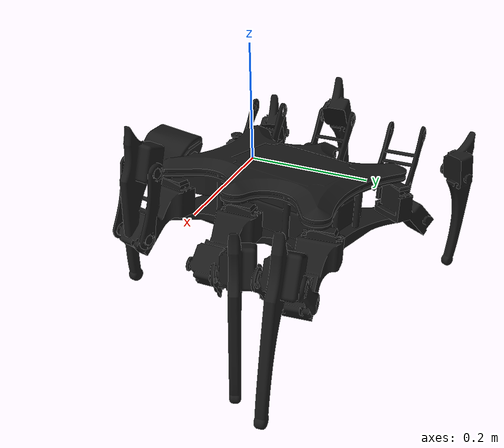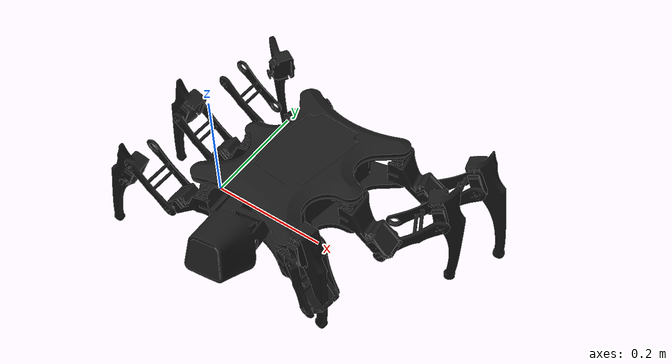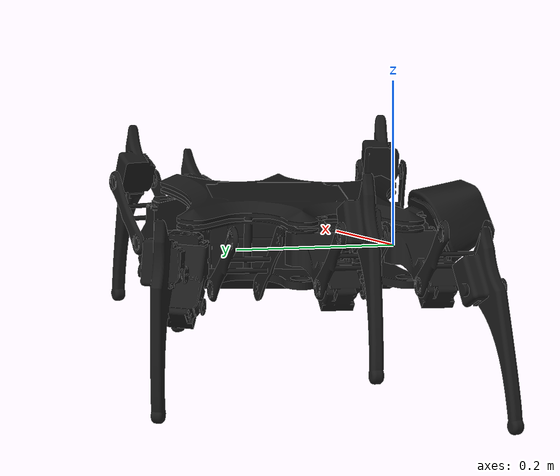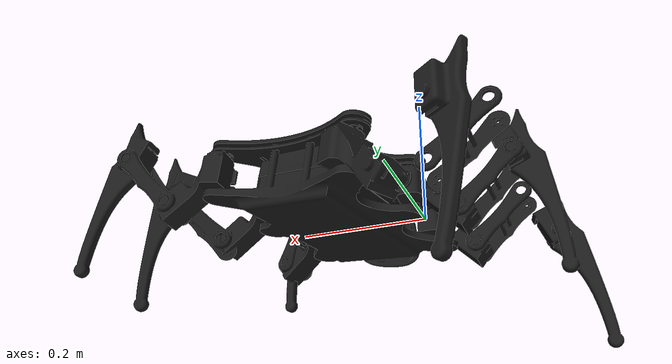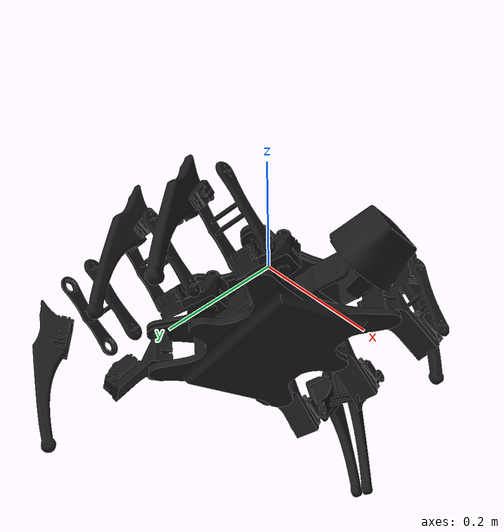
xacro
<?xml version="1.0" ?>
<robot name="hexapod" xmlns:xacro="http://www.ros.org/wiki/xacro">

<xacro:include filename="$(find hexapod_description)/urdf/materials.xacro" />
<xacro:include filename="$(find hexapod_description)/urdf/hexapod.trans" />
<xacro:include filename="$(find hexapod_description)/urdf/hexapod.gazebo" />
<link name="base_link">
  <inertial>
    <origin xyz="0.1000352418955988 0.06495559041692857 0.006960329203092366" rpy="0 0 0"/>
    <mass value="14.09466584247892"/>
    <inertia ixx="0.167546" iyy="0.075339" izz="0.199615" ixy="-0.012339" iyz="0.003184" ixz="-0.003868"/>
  </inertial>
  <visual>
    <origin xyz="0 0 0" rpy="0 0 0"/>
    <geometry>
      <mesh filename="file://$(find hexapod_description)/meshes/base_link.stl" scale="0.001 0.001 0.001"/>
    </geometry>
    <material name="silver"/>
  </visual>
  <collision>
    <origin xyz="0 0 0" rpy="0 0 0"/>
    <geometry>
      <mesh filename="file://$(find hexapod_description)/meshes/base_link.stl" scale="0.001 0.001 0.001"/>
    </geometry>
  </collision>
</link>

<link name="leg_1_link_2_1">
  <inertial>
    <origin xyz="-0.020798247907869903 -0.003004122621169035 -0.05840364105605461" rpy="0 0 0"/>
    <mass value="1.012661950148346"/>
    <inertia ixx="0.001014" iyy="0.001236" izz="0.000891" ixy="-0.000197" iyz="-0.00022" ixz="-0.000489"/>
  </inertial>
  <visual>
    <origin xyz="0.031628 0.00646 -0.021757" rpy="0 0 0"/>
    <geometry>
      <mesh filename="file://$(find hexapod_description)/meshes/leg_1_link_2_1.stl" scale="0.001 0.001 0.001"/>
    </geometry>
    <material name="silver"/>
  </visual>
  <collision>
    <origin xyz="0.031628 0.00646 -0.021757" rpy="0 0 0"/>
    <geometry>
      <mesh filename="file://$(find hexapod_description)/meshes/leg_1_link_2_1.stl" scale="0.001 0.001 0.001"/>
    </geometry>
  </collision>
</link>

<link name="leg_1_link_3_1">
  <inertial>
    <origin xyz="-0.05232794213563882 0.015850438170881664 0.012387465467738626" rpy="0 0 0"/>
    <mass value="0.22871600239093776"/>
    <inertia ixx="0.000208" iyy="0.000275" izz="0.000422" ixy="-1e-05" iyz="1.8e-05" ixz="6.7e-05"/>
  </inertial>
  <visual>
    <origin xyz="0.080903 0.053284 0.063455" rpy="0 0 0"/>
    <geometry>
      <mesh filename="file://$(find hexapod_description)/meshes/leg_1_link_3_1.stl" scale="0.001 0.001 0.001"/>
    </geometry>
    <material name="silver"/>
  </visual>
  <collision>
    <origin xyz="0.080903 0.053284 0.063455" rpy="0 0 0"/>
    <geometry>
      <mesh filename="file://$(find hexapod_description)/meshes/leg_1_link_3_1.stl" scale="0.001 0.001 0.001"/>
    </geometry>
  </collision>
</link>

<link name="leg_1_link_1_1">
  <inertial>
    <origin xyz="-0.024118708207036738 0.023198280722906535 -0.02416394528421939" rpy="0 0 0"/>
    <mass value="0.907399585528797"/>
    <inertia ixx="0.0028" iyy="0.003123" izz="0.0006" ixy="-0.00015" iyz="-0.00034" ixz="-0.000941"/>
  </inertial>
  <visual>
    <origin xyz="0.175395 0.070243 0.035462" rpy="0 0 0"/>
    <geometry>
      <mesh filename="file://$(find hexapod_description)/meshes/leg_1_link_1_1.stl" scale="0.001 0.001 0.001"/>
    </geometry>
    <material name="silver"/>
  </visual>
  <collision>
    <origin xyz="0.175395 0.070243 0.035462" rpy="0 0 0"/>
    <geometry>
      <mesh filename="file://$(find hexapod_description)/meshes/leg_1_link_1_1.stl" scale="0.001 0.001 0.001"/>
    </geometry>
  </collision>
</link>

<link name="leg_3_link_3_1">
  <inertial>
    <origin xyz="-0.014715328300328638 0.017066498243044487 -0.05783367655412228" rpy="0 0 0"/>
    <mass value="1.0126620006859057"/>
    <inertia ixx="0.000964" iyy="0.001294" izz="0.000883" ixy="0.000135" iyz="0.000218" ixz="-0.000494"/>
  </inertial>
  <visual>
    <origin xyz="-0.02145 -0.24803 -0.025922" rpy="0 0 0"/>
    <geometry>
      <mesh filename="file://$(find hexapod_description)/meshes/leg_3_link_3_1.stl" scale="0.001 0.001 0.001"/>
    </geometry>
    <material name="silver"/>
  </visual>
  <collision>
    <origin xyz="-0.02145 -0.24803 -0.025922" rpy="0 0 0"/>
    <geometry>
      <mesh filename="file://$(find hexapod_description)/meshes/leg_3_link_3_1.stl" scale="0.001 0.001 0.001"/>
    </geometry>
  </collision>
</link>

<link name="leg_3_link_2_1">
  <inertial>
    <origin xyz="-0.02490321172110873 0.04393892851157011 0.024331856966839732" rpy="0 0 0"/>
    <mass value="0.2287158182027981"/>
    <inertia ixx="0.000248" iyy="0.000272" izz="0.000385" ixy="1.3e-05" iyz="-6.3e-05" ixz="8.6e-05"/>
  </inertial>
  <visual>
    <origin xyz="0.042897 -0.255314 0.061759" rpy="0 0 0"/>
    <geometry>
      <mesh filename="file://$(find hexapod_description)/meshes/leg_3_link_2_1.stl" scale="0.001 0.001 0.001"/>
    </geometry>
    <material name="silver"/>
  </visual>
  <collision>
    <origin xyz="0.042897 -0.255314 0.061759" rpy="0 0 0"/>
    <geometry>
      <mesh filename="file://$(find hexapod_description)/meshes/leg_3_link_2_1.stl" scale="0.001 0.001 0.001"/>
    </geometry>
  </collision>
</link>

<link name="leg_3_link_1_1">
  <inertial>
    <origin xyz="0.008717952333481188 0.029799584273488944 -0.027197642277439673" rpy="0 0 0"/>
    <mass value="0.9073986789846695"/>
    <inertia ixx="0.00313" iyy="0.003181" izz="0.000211" ixy="8e-06" iyz="3.3e-05" ixz="0.000122"/>
  </inertial>
  <visual>
    <origin xyz="0.11862 -0.300684 0.014775" rpy="0 0 0"/>
    <geometry>
      <mesh filename="file://$(find hexapod_description)/meshes/leg_3_link_1_1.stl" scale="0.001 0.001 0.001"/>
    </geometry>
    <material name="silver"/>
  </visual>
  <collision>
    <origin xyz="0.11862 -0.300684 0.014775" rpy="0 0 0"/>
    <geometry>
      <mesh filename="file://$(find hexapod_description)/meshes/leg_3_link_1_1.stl" scale="0.001 0.001 0.001"/>
    </geometry>
  </collision>
</link>

<link name="leg_4_link_3_1">
  <inertial>
    <origin xyz="0.03493574224479934 -0.00037422890006483245 -0.05136730013941539" rpy="0 0 0"/>
    <mass value="1.0132520108724496"/>
    <inertia ixx="0.000726" iyy="0.001283" izz="0.001145" ixy="0.000203" iyz="-0.00012" ixz="0.000471"/>
  </inertial>
  <visual>
    <origin xyz="-0.178057 0.050638 -0.048896" rpy="0 0 0"/>
    <geometry>
      <mesh filename="file://$(find hexapod_description)/meshes/leg_4_link_3_1.stl" scale="0.001 0.001 0.001"/>
    </geometry>
    <material name="silver"/>
  </visual>
  <collision>
    <origin xyz="-0.178057 0.050638 -0.048896" rpy="0 0 0"/>
    <geometry>
      <mesh filename="file://$(find hexapod_description)/meshes/leg_4_link_3_1.stl" scale="0.001 0.001 0.001"/>
    </geometry>
  </collision>
</link>

<link name="leg_4_link_2_1">
  <inertial>
    <origin xyz="0.051695518913694394 0.020397632984701985 -0.0029876891797632928" rpy="0 0 0"/>
    <mass value="0.22866968962750417"/>
    <inertia ixx="0.000188" iyy="0.000275" izz="0.00044" ixy="8e-06" iyz="-2e-06" ixz="1.9e-05"/>
  </inertial>
  <visual>
    <origin xyz="-0.251957 0.091451 0.020912" rpy="0 0 0"/>
    <geometry>
      <mesh filename="file://$(find hexapod_description)/meshes/leg_4_link_2_1.stl" scale="0.001 0.001 0.001"/>
    </geometry>
    <material name="silver"/>
  </visual>
  <collision>
    <origin xyz="-0.251957 0.091451 0.020912" rpy="0 0 0"/>
    <geometry>
      <mesh filename="file://$(find hexapod_description)/meshes/leg_4_link_2_1.stl" scale="0.001 0.001 0.001"/>
    </geometry>
  </collision>
</link>

<link name="leg_4_link_1_1">
  <inertial>
    <origin xyz="-0.000526697869027537 0.02827489662401167 -0.030353038043343876" rpy="0 0 0"/>
    <mass value="0.9074869947367368"/>
    <inertia ixx="0.002641" iyy="0.003177" izz="0.000712" ixy="3e-05" iyz="1.7e-05" ixz="-0.001109"/>
  </inertial>
  <visual>
    <origin xyz="-0.351263 0.100253 0.028711" rpy="0 0 0"/>
    <geometry>
      <mesh filename="file://$(find hexapod_description)/meshes/leg_4_link_1_1.stl" scale="0.001 0.001 0.001"/>
    </geometry>
    <material name="silver"/>
  </visual>
  <collision>
    <origin xyz="-0.351263 0.100253 0.028711" rpy="0 0 0"/>
    <geometry>
      <mesh filename="file://$(find hexapod_description)/meshes/leg_4_link_1_1.stl" scale="0.001 0.001 0.001"/>
    </geometry>
  </collision>
</link>

<link name="leg_5_link_3_1">
  <inertial>
    <origin xyz="0.033866656604737144 -0.008244553986686304 -0.05142356931495705" rpy="0 0 0"/>
    <mass value="1.0132520108724496"/>
    <inertia ixx="0.00087" iyy="0.00115" izz="0.001134" ixy="0.000307" iyz="-0.000243" ixz="0.000428"/>
  </inertial>
  <visual>
    <origin xyz="-0.212362 -0.074971 -0.051984" rpy="0 0 0"/>
    <geometry>
      <mesh filename="file://$(find hexapod_description)/meshes/leg_5_link_3_1.stl" scale="0.001 0.001 0.001"/>
    </geometry>
    <material name="silver"/>
  </visual>
  <collision>
    <origin xyz="-0.212362 -0.074971 -0.051984" rpy="0 0 0"/>
    <geometry>
      <mesh filename="file://$(find hexapod_description)/meshes/leg_5_link_3_1.stl" scale="0.001 0.001 0.001"/>
    </geometry>
  </collision>
</link>

<link name="leg_5_llink_2_1">
  <inertial>
    <origin xyz="0.05581296761700272 0.005046809815590542 0.0013923363225871316" rpy="0 0 0"/>
    <mass value="0.22866968962750417"/>
    <inertia ixx="0.000198" iyy="0.000265" izz="0.000441" ixy="3e-05" iyz="-3e-06" ixz="-9e-06"/>
  </inertial>
  <visual>
    <origin xyz="-0.272618 -0.017746 0.019394" rpy="0 0 0"/>
    <geometry>
      <mesh filename="file://$(find hexapod_description)/meshes/leg_5_llink_2_1.stl" scale="0.001 0.001 0.001"/>
    </geometry>
    <material name="silver"/>
  </visual>
  <collision>
    <origin xyz="-0.272618 -0.017746 0.019394" rpy="0 0 0"/>
    <geometry>
      <mesh filename="file://$(find hexapod_description)/meshes/leg_5_llink_2_1.stl" scale="0.001 0.001 0.001"/>
    </geometry>
  </collision>
</link>

<link name="leg_5_link_1_1">
  <inertial>
    <origin xyz="0.013937076987451114 0.025884273932207755 -0.029271222693096868" rpy="0 0 0"/>
    <mass value="0.9074869947367368"/>
    <inertia ixx="0.003054" iyy="0.003145" izz="0.000331" ixy="7e-05" iyz="0.000231" ixz="-0.000546"/>
  </inertial>
  <visual>
    <origin xyz="-0.365809 0.018422 0.016698" rpy="0 0 0"/>
    <geometry>
      <mesh filename="file://$(find hexapod_description)/meshes/leg_5_link_1_1.stl" scale="0.001 0.001 0.001"/>
    </geometry>
    <material name="silver"/>
  </visual>
  <collision>
    <origin xyz="-0.365809 0.018422 0.016698" rpy="0 0 0"/>
    <geometry>
      <mesh filename="file://$(find hexapod_description)/meshes/leg_5_link_1_1.stl" scale="0.001 0.001 0.001"/>
    </geometry>
  </collision>
</link>

<link name="leg_6_link_3_1">
  <inertial>
    <origin xyz="0.03477889817756116 0.0024676237025516856 -0.05141615896524518" rpy="0 0 0"/>
    <mass value="1.0132520108724496"/>
    <inertia ixx="0.000692" iyy="0.001316" izz="0.001146" ixy="0.000149" iyz="-7.4e-05" ixz="0.000479"/>
  </inertial>
  <visual>
    <origin xyz="-0.231135 -0.203852 -0.053061" rpy="0 0 0"/>
    <geometry>
      <mesh filename="file://$(find hexapod_description)/meshes/leg_6_link_3_1.stl" scale="0.001 0.001 0.001"/>
    </geometry>
    <material name="silver"/>
  </visual>
  <collision>
    <origin xyz="-0.231135 -0.203852 -0.053061" rpy="0 0 0"/>
    <geometry>
      <mesh filename="file://$(find hexapod_description)/meshes/leg_6_link_3_1.stl" scale="0.001 0.001 0.001"/>
    </geometry>
  </collision>
</link>

<link name="leg_6_link_2_1">
  <inertial>
    <origin xyz="-0.015065755941645498 0.025266709153690392 0.04771890579685114" rpy="0 0 0"/>
    <mass value="0.22866968962750417"/>
    <inertia ixx="0.000417" iyy="0.000276" izz="0.000211" ixy="2e-06" iyz="-0.0" ixz="7.6e-05"/>
  </inertial>
  <visual>
    <origin xyz="-0.308723 -0.169751 0.016345" rpy="0 0 0"/>
    <geometry>
      <mesh filename="file://$(find hexapod_description)/meshes/leg_6_link_2_1.stl" scale="0.001 0.001 0.001"/>
    </geometry>
    <material name="silver"/>
  </visual>
  <collision>
    <origin xyz="-0.308723 -0.169751 0.016345" rpy="0 0 0"/>
    <geometry>
      <mesh filename="file://$(find hexapod_description)/meshes/leg_6_link_2_1.stl" scale="0.001 0.001 0.001"/>
    </geometry>
  </collision>
</link>

<link name="leg_6_link_1_1">
  <inertial>
    <origin xyz="0.030015927768925255 0.028477589836575362 0.003027671908309146" rpy="0 0 0"/>
    <mass value="0.9074869947367368"/>
    <inertia ixx="0.000344" iyy="0.003179" izz="0.003007" ixy="6e-05" iyz="4e-06" ixz="0.000618"/>
  </inertial>
  <visual>
    <origin xyz="-0.277665 -0.170495 -0.078706" rpy="0 0 0"/>
    <geometry>
      <mesh filename="file://$(find hexapod_description)/meshes/leg_6_link_1_1.stl" scale="0.001 0.001 0.001"/>
    </geometry>
    <material name="silver"/>
  </visual>
  <collision>
    <origin xyz="-0.277665 -0.170495 -0.078706" rpy="0 0 0"/>
    <geometry>
      <mesh filename="file://$(find hexapod_description)/meshes/leg_6_link_1_1.stl" scale="0.001 0.001 0.001"/>
    </geometry>
  </collision>
</link>

<link name="leg_2_link_3__1">
  <inertial>
    <origin xyz="-0.0204324626555867 0.004535002979926123 -0.058433485854018384" rpy="0 0 0"/>
    <mass value="1.0126607300527286"/>
    <inertia ixx="0.000937" iyy="0.001326" izz="0.000878" ixy="-9.5e-05" iyz="-6.9e-05" ixz="-0.000533"/>
  </inertial>
  <visual>
    <origin xyz="0.012855 -0.122421 -0.022834" rpy="0 0 0"/>
    <geometry>
      <mesh filename="file://$(find hexapod_description)/meshes/leg_2_link_3__1.stl" scale="0.001 0.001 0.001"/>
    </geometry>
    <material name="silver"/>
  </visual>
  <collision>
    <origin xyz="0.012855 -0.122421 -0.022834" rpy="0 0 0"/>
    <geometry>
      <mesh filename="file://$(find hexapod_description)/meshes/leg_2_link_3__1.stl" scale="0.001 0.001 0.001"/>
    </geometry>
  </collision>
</link>

<link name="leg_2_link_2_1">
  <inertial>
    <origin xyz="-0.04728937759402714 0.028753242764041703 0.008935509645913484" rpy="0 0 0"/>
    <mass value="0.22871574861196214"/>
    <inertia ixx="0.000197" iyy="0.000276" izz="0.000432" ixy="7e-06" iyz="-4e-06" ixz="4.9e-05"/>
  </inertial>
  <visual>
    <origin xyz="0.072124 -0.093122 0.063828" rpy="0 0 0"/>
    <geometry>
      <mesh filename="file://$(find hexapod_description)/meshes/leg_2_link_2_1.stl" scale="0.001 0.001 0.001"/>
    </geometry>
    <material name="silver"/>
  </visual>
  <collision>
    <origin xyz="0.072124 -0.093122 0.063828" rpy="0 0 0"/>
    <geometry>
      <mesh filename="file://$(find hexapod_description)/meshes/leg_2_link_2_1.stl" scale="0.001 0.001 0.001"/>
    </geometry>
  </collision>
</link>

<link name="leg_2_link_1_1">
  <inertial>
    <origin xyz="0.00945298222541896 0.027417343905499214 0.029370612679365103" rpy="0 0 0"/>
    <mass value="0.9073984436402253"/>
    <inertia ixx="0.003123" iyy="0.003172" izz="0.000228" ixy="1.4e-05" iyz="6.6e-05" ixz="0.000248"/>
  </inertial>
  <visual>
    <origin xyz="0.169894 -0.100943 0.04434" rpy="0 0 0"/>
    <geometry>
      <mesh filename="file://$(find hexapod_description)/meshes/leg_2_link_1_1.stl" scale="0.001 0.001 0.001"/>
    </geometry>
    <material name="silver"/>
  </visual>
  <collision>
    <origin xyz="0.169894 -0.100943 0.04434" rpy="0 0 0"/>
    <geometry>
      <mesh filename="file://$(find hexapod_description)/meshes/leg_2_link_1_1.stl" scale="0.001 0.001 0.001"/>
    </geometry>
  </collision>
</link>

<joint name="Leg_1_coxa" type="continuous">
  <origin xyz="-0.031628 -0.00646 0.021757" rpy="0 0 0"/>
  <parent link="base_link"/>
  <child link="leg_1_link_2_1"/>
  <axis xyz="0.126261 -0.010099 -0.991946"/>
</joint>

<joint name="Leg_1_tibia" type="continuous">
  <origin xyz="-0.049275 -0.046824 -0.085212" rpy="0 0 0"/>
  <parent link="leg_1_link_2_1"/>
  <child link="leg_1_link_3_1"/>
  <axis xyz="0.186207 -0.981932 0.033699"/>
</joint>

<joint name="Leg_1_femur" type="continuous">
  <origin xyz="-0.094492 -0.016959 0.027993" rpy="0 0 0"/>
  <parent link="leg_1_link_3_1"/>
  <child link="leg_1_link_1_1"/>
  <axis xyz="0.186207 -0.981932 0.033699"/>
</joint>

<joint name="Leg_3_coxa" type="continuous">
  <origin xyz="0.02145 0.24803 0.025922" rpy="0 0 0"/>
  <parent link="base_link"/>
  <child link="leg_3_link_3_1"/>
  <axis xyz="0.126261 -0.010099 -0.991946"/>
</joint>

<joint name="Leg_3_tibia" type="continuous">
  <origin xyz="-0.064347 0.007284 -0.087681" rpy="0 0 0"/>
  <parent link="leg_3_link_3_1"/>
  <child link="leg_3_link_2_1"/>
  <axis xyz="-0.540263 -0.839339 -0.060222"/>
</joint>

<joint name="Leg_3_femur" type="continuous">
  <origin xyz="-0.075723 0.04537 0.046984" rpy="0 0 0"/>
  <parent link="leg_3_link_2_1"/>
  <child link="leg_3_link_1_1"/>
  <axis xyz="-0.540263 -0.839339 -0.060222"/>
</joint>

<joint name="leg_4_coxa" type="revolute">
  <origin xyz="0.178057 -0.050638 0.048896" rpy="0 0 0"/>
  <parent link="base_link"/>
  <child link="leg_4_link_3_1"/>
  <axis xyz="0.126261 -0.010099 -0.991946"/>
  <limit upper="0.349066" lower="-0.436332" effort="100" velocity="100"/>
</joint>

<joint name="Leg_4_tibia" type="revolute">
  <origin xyz="0.0739 -0.040813 -0.069808" rpy="0 0 0"/>
  <parent link="leg_4_link_3_1"/>
  <child link="leg_4_link_2_1"/>
  <axis xyz="-0.088375 -0.996087 -0.001107"/>
  <limit upper="1.832596" lower="-1.832596" effort="100" velocity="100"/>
</joint>

<joint name="Leg_4_femur" type="revolute">
  <origin xyz="0.099306 -0.008802 -0.007799" rpy="0 0 0"/>
  <parent link="leg_4_link_2_1"/>
  <child link="leg_4_link_1_1"/>
  <axis xyz="0.088375 0.996087 0.001107"/>
  <limit upper="0.785398" lower="-2.268928" effort="100" velocity="100"/>
</joint>

<joint name="leg_5_coxa" type="revolute">
  <origin xyz="0.212362 0.074971 0.051984" rpy="0 0 0"/>
  <parent link="base_link"/>
  <child link="leg_5_link_3_1"/>
  <axis xyz="0.126261 -0.010099 -0.991946"/>
  <limit upper="-0.139626" lower="-0.523599" effort="100" velocity="100"/>
</joint>

<joint name="Leg_5_tibia" type="revolute">
  <origin xyz="0.060256 -0.057225 -0.071378" rpy="0 0 0"/>
  <parent link="leg_5_link_3_1"/>
  <child link="leg_5_llink_2_1"/>
  <axis xyz="-0.360661 -0.931986 -0.036418"/>
  <limit upper="1.047198" lower="-3.665191" effort="100" velocity="100"/>
</joint>

<joint name="Leg_5_femur" type="revolute">
  <origin xyz="0.093191 -0.036168 0.002696" rpy="0 0 0"/>
  <parent link="leg_5_llink_2_1"/>
  <child link="leg_5_link_1_1"/>
  <axis xyz="0.360661 0.931986 0.036418"/>
  <limit upper="0.785398" lower="-2.268928" effort="100" velocity="100"/>
</joint>

<joint name="Leg_6_coxa" type="revolute">
  <origin xyz="0.231135 0.203852 0.053061" rpy="0 0 0"/>
  <parent link="base_link"/>
  <child link="leg_6_link_3_1"/>
  <axis xyz="0.126261 -0.010099 -0.991946"/>
  <limit upper="-0.139626" lower="-0.523599" effort="100" velocity="100"/>
</joint>

<joint name="Leg_6_tibia" type="revolute">
  <origin xyz="0.077588 -0.034101 -0.069406" rpy="0 0 0"/>
  <parent link="leg_6_link_3_1"/>
  <child link="leg_6_link_2_1"/>
  <axis xyz="0.01178 -0.999862 0.011679"/>
  <limit upper="0.959931" lower="-3.316126" effort="100" velocity="100"/>
</joint>

<joint name="Leg_6_femur" type="revolute">
  <origin xyz="-0.031058 0.000744 0.095051" rpy="0 0 0"/>
  <parent link="leg_6_link_2_1"/>
  <child link="leg_6_link_1_1"/>
  <axis xyz="-0.01178 0.999862 -0.011679"/>
  <limit upper="0.0" lower="-2.268928" effort="100" velocity="100"/>
</joint>

<joint name="Leg_2_coxa" type="continuous">
  <origin xyz="-0.012855 0.122421 0.022834" rpy="0 0 0"/>
  <parent link="base_link"/>
  <child link="leg_2_link_3__1"/>
  <axis xyz="0.126261 -0.010099 -0.991946"/>
</joint>

<joint name="Leg_2_tibia" type="continuous">
  <origin xyz="-0.059269 -0.029299 -0.086662" rpy="0 0 0"/>
  <parent link="leg_2_link_3__1"/>
  <child link="leg_2_link_2_1"/>
  <axis xyz="-0.079733 -0.996816 0.0"/>
</joint>

<joint name="Leg_2_femur" type="continuous">
  <origin xyz="-0.09777 0.007821 0.019488" rpy="0 0 0"/>
  <parent link="leg_2_link_2_1"/>
  <child link="leg_2_link_1_1"/>
  <axis xyz="-0.079733 -0.996816 0.0"/>
</joint>

</robot>

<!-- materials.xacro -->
<robot name="hexapod" xmlns:xacro="http://www.ros.org/wiki/xacro" >

<material name="silver">
  <color rgba="0.100 0.100 0.100 1.000"/>
</material>

<material name="gold">
  <color rgba="0.90 0.90 0.00 1.000"/>
</material>

</robot>

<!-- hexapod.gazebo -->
<robot name="hexapod" xmlns:xacro="http://www.ros.org/wiki/xacro" >

<xacro:property name="body_color" value="Gazebo/Silver" />

<gazebo reference="base_link">
  <material>${body_color}</material>
  <mu1>0.2</mu1>
  <mu2>0.2</mu2>
  <self_collide>true</self_collide>
  <gravity>true</gravity>
</gazebo>

<gazebo reference="leg_1_link_2_1">
  <material>${body_color}</material>
  <mu1>0.2</mu1>
  <mu2>0.2</mu2>
  <self_collide>true</self_collide>
</gazebo>

<gazebo reference="leg_1_link_3_1">
  <material>${body_color}</material>
  <mu1>0.2</mu1>
  <mu2>0.2</mu2>
  <self_collide>true</self_collide>
</gazebo>

<gazebo reference="leg_1_link_1_1">
  <material>${body_color}</material>
  <mu1>0.2</mu1>
  <mu2>0.2</mu2>
  <self_collide>true</self_collide>
</gazebo>

<gazebo reference="leg_3_link_3_1">
  <material>${body_color}</material>
  <mu1>0.2</mu1>
  <mu2>0.2</mu2>
  <self_collide>true</self_collide>
</gazebo>

<gazebo reference="leg_3_link_2_1">
  <material>${body_color}</material>
  <mu1>0.2</mu1>
  <mu2>0.2</mu2>
  <self_collide>true</self_collide>
</gazebo>

<gazebo reference="leg_3_link_1_1">
  <material>${body_color}</material>
  <mu1>0.2</mu1>
  <mu2>0.2</mu2>
  <self_collide>true</self_collide>
</gazebo>

<gazebo reference="leg_4_link_3_1">
  <material>${body_color}</material>
  <mu1>0.2</mu1>
  <mu2>0.2</mu2>
  <self_collide>true</self_collide>
</gazebo>

<gazebo reference="leg_4_link_2_1">
  <material>${body_color}</material>
  <mu1>0.2</mu1>
  <mu2>0.2</mu2>
  <self_collide>true</self_collide>
</gazebo>

<gazebo reference="leg_4_link_1_1">
  <material>${body_color}</material>
  <mu1>0.2</mu1>
  <mu2>0.2</mu2>
  <self_collide>true</self_collide>
</gazebo>

<gazebo reference="leg_5_link_3_1">
  <material>${body_color}</material>
  <mu1>0.2</mu1>
  <mu2>0.2</mu2>
  <self_collide>true</self_collide>
</gazebo>

<gazebo reference="leg_5_llink_2_1">
  <material>${body_color}</material>
  <mu1>0.2</mu1>
  <mu2>0.2</mu2>
  <self_collide>true</self_collide>
</gazebo>

<gazebo reference="leg_5_link_1_1">
  <material>${body_color}</material>
  <mu1>0.2</mu1>
  <mu2>0.2</mu2>
  <self_collide>true</self_collide>
</gazebo>

<gazebo reference="leg_6_link_3_1">
  <material>${body_color}</material>
  <mu1>0.2</mu1>
  <mu2>0.2</mu2>
  <self_collide>true</self_collide>
</gazebo>

<gazebo reference="leg_6_link_2_1">
  <material>${body_color}</material>
  <mu1>0.2</mu1>
  <mu2>0.2</mu2>
  <self_collide>true</self_collide>
</gazebo>

<gazebo reference="leg_6_link_1_1">
  <material>${body_color}</material>
  <mu1>0.2</mu1>
  <mu2>0.2</mu2>
  <self_collide>true</self_collide>
</gazebo>

<gazebo reference="leg_2_link_3__1__1">
  <material>${body_color}</material>
  <mu1>0.2</mu1>
  <mu2>0.2</mu2>
  <self_collide>true</self_collide>
</gazebo>

<gazebo reference="leg_2_link_2_1">
  <material>${body_color}</material>
  <mu1>0.2</mu1>
  <mu2>0.2</mu2>
  <self_collide>true</self_collide>
</gazebo>

<gazebo reference="leg_2_link_1_1">
  <material>${body_color}</material>
  <mu1>0.2</mu1>
  <mu2>0.2</mu2>
  <self_collide>true</self_collide>
</gazebo>

</robot>
